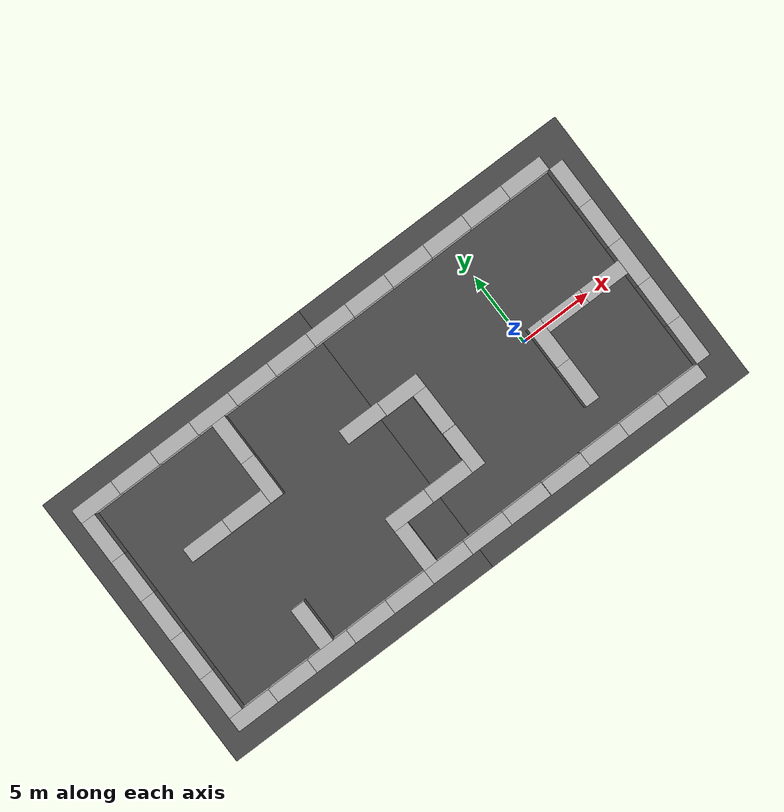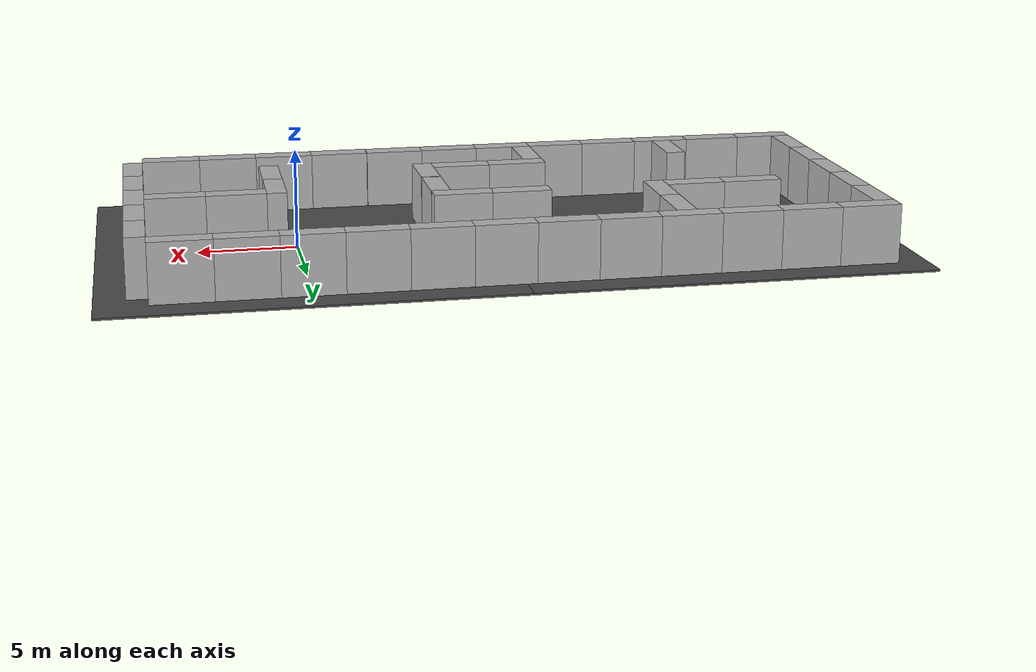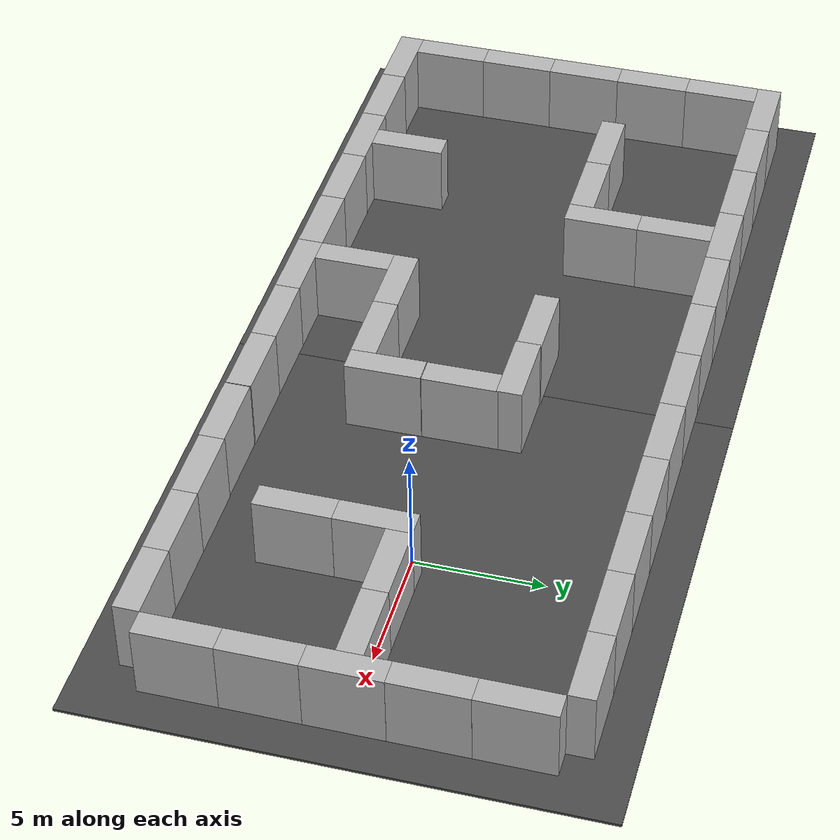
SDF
<sdf version="1.4">
 <world name="default">
  <light name="sun" type="directional">
   <pose>0 0 10 0 -0 0</pose>
   <diffuse>0.8 0.8 0.8 1</diffuse>
   <specular>0.2 0.2 0.2 1</specular>
   <attenuation>
    <range>1000</range>
    <constant>0.9</constant>
    <linear>0.01</linear>
    <quadratic>0.001</quadratic>
   </attenuation>
   <direction>-0.5 0.1 -0.9</direction>
  </light>
  <physics type="ode">
   <ode>
    <solver><type>quick</type><iters>1000</iters><sor>1.3</sor></solver>
    <constraints>
     <cfm>0</cfm>
     <erp>0.2</erp>
     <contact_max_correcting_vel>100</contact_max_correcting_vel>
     <contact_surface_layer>0.001</contact_surface_layer>
    </constraints>
   </ode>
   <max_step_size>0.01</max_step_size>
   <real_time_factor>1</real_time_factor>
   <real_time_update_rate>100</real_time_update_rate>
   <gravity>0 0 -9.8</gravity>
  </physics>
  <scene><ambient>0.4 0.4 0.4 1</ambient><background>0.7 0.7 0.7 1</background><shadows>1</shadows></scene>
  <spherical_coordinates>
   <surface_model>EARTH_WGS84</surface_model>
   <latitude_deg>0</latitude_deg>
   <longitude_deg>0</longitude_deg>
   <elevation>0</elevation>
   <heading_deg>0</heading_deg>
  </spherical_coordinates>
  <model name="asphalt_plane">
   <static>1</static>
   <link name="link">
    <collision name="collision"><geometry><box><size>20 20 0.1</size></box></geometry></collision>
    <visual name="visual">
     <cast_shadows>0</cast_shadows>
     <geometry><box><size>20 20 0.1</size></box></geometry>
     <material>
      <script>
       <uri>model://asphalt_plane/materials/scripts</uri>
       <uri>model://asphalt_plane/materials/textures</uri>
       <name>vrc/asphalt</name>
      </script>
     </material>
    </visual>
    <velocity_decay><linear>0</linear><angular>0</angular></velocity_decay>
   </link>
  </model>
  <model name="brick_box_3x1x3">
   <static>1</static>
   <link name="chassis">
    <pose>0 0 1.5 0 -0 0</pose>
    <collision name="collision"><geometry><box><size>3 1 3</size></box></geometry></collision>
    <visual name="visual">
     <geometry><mesh><uri>model://brick_box_3x1x3/meshes/simple_box.dae</uri><scale>3 1 3</scale></mesh></geometry>
     <material>
      <script>
       <uri>model://brick_box_3x1x3/materials/scripts</uri>
       <uri>model://brick_box_3x1x3/materials/textures</uri>
       <name>BrickBox/Diffuse</name>
      </script>
     </material>
    </visual>
    <velocity_decay><linear>0</linear><angular>0</angular></velocity_decay>
   </link>
   <pose>0 8 0 0 -0 0</pose>
  </model>
  <model name="brick_box_3x1x3_0">
   <static>1</static>
   <link name="chassis">
    <pose>0 0 1.5 0 -0 0</pose>
    <collision name="collision"><geometry><box><size>3 1 3</size></box></geometry></collision>
    <visual name="visual">
     <geometry><mesh><uri>model://brick_box_3x1x3/meshes/simple_box.dae</uri><scale>3 1 3</scale></mesh></geometry>
     <material>
      <script>
       <uri>model://brick_box_3x1x3/materials/scripts</uri>
       <uri>model://brick_box_3x1x3/materials/textures</uri>
       <name>BrickBox/Diffuse</name>
      </script>
     </material>
    </visual>
    <velocity_decay><linear>0</linear><angular>0</angular></velocity_decay>
   </link>
   <pose>3 8 0 0 -0 0</pose>
  </model>
  <model name="brick_box_3x1x3_1">
   <static>1</static>
   <link name="chassis">
    <pose>0 0 1.5 0 -0 0</pose>
    <collision name="collision"><geometry><box><size>3 1 3</size></box></geometry></collision>
    <visual name="visual">
     <geometry><mesh><uri>model://brick_box_3x1x3/meshes/simple_box.dae</uri><scale>3 1 3</scale></mesh></geometry>
     <material>
      <script>
       <uri>model://brick_box_3x1x3/materials/scripts</uri>
       <uri>model://brick_box_3x1x3/materials/textures</uri>
       <name>BrickBox/Diffuse</name>
      </script>
     </material>
    </visual>
    <velocity_decay><linear>0</linear><angular>0</angular></velocity_decay>
   </link>
   <pose>6 8 0 0 -0 0</pose>
  </model>
  <model name="brick_box_3x1x3_2">
   <static>1</static>
   <link name="chassis">
    <pose>0 0 1.5 0 -0 0</pose>
    <collision name="collision"><geometry><box><size>3 1 3</size></box></geometry></collision>
    <visual name="visual">
     <geometry><mesh><uri>model://brick_box_3x1x3/meshes/simple_box.dae</uri><scale>3 1 3</scale></mesh></geometry>
     <material>
      <script>
       <uri>model://brick_box_3x1x3/materials/scripts</uri>
       <uri>model://brick_box_3x1x3/materials/textures</uri>
       <name>BrickBox/Diffuse</name>
      </script>
     </material>
    </visual>
    <velocity_decay><linear>0</linear><angular>0</angular></velocity_decay>
   </link>
   <pose>-3 8 0 0 -0 0</pose>
  </model>
  <model name="brick_box_3x1x3_3">
   <static>1</static>
   <link name="chassis">
    <pose>0 0 1.5 0 -0 0</pose>
    <collision name="collision"><geometry><box><size>3 1 3</size></box></geometry></collision>
    <visual name="visual">
     <geometry><mesh><uri>model://brick_box_3x1x3/meshes/simple_box.dae</uri><scale>3 1 3</scale></mesh></geometry>
     <material>
      <script>
       <uri>model://brick_box_3x1x3/materials/scripts</uri>
       <uri>model://brick_box_3x1x3/materials/textures</uri>
       <name>BrickBox/Diffuse</name>
      </script>
     </material>
    </visual>
    <velocity_decay><linear>0</linear><angular>0</angular></velocity_decay>
   </link>
   <pose>-6 8 0 0 -0 0</pose>
  </model>
  <model name="brick_box_3x1x3_4">
   <static>1</static>
   <link name="chassis">
    <pose>0 0 1.5 0 -0 0</pose>
    <collision name="collision"><geometry><box><size>3 1 3</size></box></geometry></collision>
    <visual name="visual">
     <geometry><mesh><uri>model://brick_box_3x1x3/meshes/simple_box.dae</uri><scale>3 1 3</scale></mesh></geometry>
     <material>
      <script>
       <uri>model://brick_box_3x1x3/materials/scripts</uri>
       <uri>model://brick_box_3x1x3/materials/textures</uri>
       <name>BrickBox/Diffuse</name>
      </script>
     </material>
    </visual>
    <velocity_decay><linear>0</linear><angular>0</angular></velocity_decay>
   </link>
   <pose>6 -8 0 0 -0 0</pose>
  </model>
  <model name="brick_box_3x1x3_5">
   <static>1</static>
   <link name="chassis">
    <pose>0 0 1.5 0 -0 0</pose>
    <collision name="collision"><geometry><box><size>3 1 3</size></box></geometry></collision>
    <visual name="visual">
     <geometry><mesh><uri>model://brick_box_3x1x3/meshes/simple_box.dae</uri><scale>3 1 3</scale></mesh></geometry>
     <material>
      <script>
       <uri>model://brick_box_3x1x3/materials/scripts</uri>
       <uri>model://brick_box_3x1x3/materials/textures</uri>
       <name>BrickBox/Diffuse</name>
      </script>
     </material>
    </visual>
    <velocity_decay><linear>0</linear><angular>0</angular></velocity_decay>
   </link>
   <pose>3 -8 0 0 -0 0</pose>
  </model>
  <model name="brick_box_3x1x3_6">
   <static>1</static>
   <link name="chassis">
    <pose>0 0 1.5 0 -0 0</pose>
    <collision name="collision"><geometry><box><size>3 1 3</size></box></geometry></collision>
    <visual name="visual">
     <geometry><mesh><uri>model://brick_box_3x1x3/meshes/simple_box.dae</uri><scale>3 1 3</scale></mesh></geometry>
     <material>
      <script>
       <uri>model://brick_box_3x1x3/materials/scripts</uri>
       <uri>model://brick_box_3x1x3/materials/textures</uri>
       <name>BrickBox/Diffuse</name>
      </script>
     </material>
    </visual>
    <velocity_decay><linear>0</linear><angular>0</angular></velocity_decay>
   </link>
   <pose>0 -8 0 0 -0 0</pose>
  </model>
  <model name="brick_box_3x1x3_14">
   <static>1</static>
   <link name="chassis">
    <pose>0 0 1.5 0 -0 0</pose>
    <collision name="collision"><geometry><box><size>3 1 3</size></box></geometry></collision>
    <visual name="visual">
     <geometry><mesh><uri>model://brick_box_3x1x3/meshes/simple_box.dae</uri><scale>3 1 3</scale></mesh></geometry>
     <material>
      <script>
       <uri>model://brick_box_3x1x3/materials/scripts</uri>
       <uri>model://brick_box_3x1x3/materials/textures</uri>
       <name>BrickBox/Diffuse</name>
      </script>
     </material>
    </visual>
    <velocity_decay><linear>0</linear><angular>0</angular></velocity_decay>
   </link>
   <pose>8 6 0 0 -0 1.57</pose>
  </model>
  <model name="brick_box_3x1x3_15">
   <static>1</static>
   <link name="chassis">
    <pose>0 0 1.5 0 -0 0</pose>
    <collision name="collision"><geometry><box><size>3 1 3</size></box></geometry></collision>
    <visual name="visual">
     <geometry><mesh><uri>model://brick_box_3x1x3/meshes/simple_box.dae</uri><scale>3 1 3</scale></mesh></geometry>
     <material>
      <script>
       <uri>model://brick_box_3x1x3/materials/scripts</uri>
       <uri>model://brick_box_3x1x3/materials/textures</uri>
       <name>BrickBox/Diffuse</name>
      </script>
     </material>
    </visual>
    <velocity_decay><linear>0</linear><angular>0</angular></velocity_decay>
   </link>
   <pose>8 3 0 0 -0 1.57</pose>
  </model>
  <model name="brick_box_3x1x3_16">
   <static>1</static>
   <link name="chassis">
    <pose>0 0 1.5 0 -0 0</pose>
    <collision name="collision"><geometry><box><size>3 1 3</size></box></geometry></collision>
    <visual name="visual">
     <geometry><mesh><uri>model://brick_box_3x1x3/meshes/simple_box.dae</uri><scale>3 1 3</scale></mesh></geometry>
     <material>
      <script>
       <uri>model://brick_box_3x1x3/materials/scripts</uri>
       <uri>model://brick_box_3x1x3/materials/textures</uri>
       <name>BrickBox/Diffuse</name>
      </script>
     </material>
    </visual>
    <velocity_decay><linear>0</linear><angular>0</angular></velocity_decay>
   </link>
   <pose>8 0 0 0 -0 1.57</pose>
  </model>
  <model name="brick_box_3x1x3_17">
   <static>1</static>
   <link name="chassis">
    <pose>0 0 1.5 0 -0 0</pose>
    <collision name="collision"><geometry><box><size>3 1 3</size></box></geometry></collision>
    <visual name="visual">
     <geometry><mesh><uri>model://brick_box_3x1x3/meshes/simple_box.dae</uri><scale>3 1 3</scale></mesh></geometry>
     <material>
      <script>
       <uri>model://brick_box_3x1x3/materials/scripts</uri>
       <uri>model://brick_box_3x1x3/materials/textures</uri>
       <name>BrickBox/Diffuse</name>
      </script>
     </material>
    </visual>
    <velocity_decay><linear>0</linear><angular>0</angular></velocity_decay>
   </link>
   <pose>8 -3 0 0 -0 1.57</pose>
  </model>
  <model name="brick_box_3x1x3_18">
   <static>1</static>
   <link name="chassis">
    <pose>0 0 1.5 0 -0 0</pose>
    <collision name="collision"><geometry><box><size>3 1 3</size></box></geometry></collision>
    <visual name="visual">
     <geometry><mesh><uri>model://brick_box_3x1x3/meshes/simple_box.dae</uri><scale>3 1 3</scale></mesh></geometry>
     <material>
      <script>
       <uri>model://brick_box_3x1x3/materials/scripts</uri>
       <uri>model://brick_box_3x1x3/materials/textures</uri>
       <name>BrickBox/Diffuse</name>
      </script>
     </material>
    </visual>
    <velocity_decay><linear>0</linear><angular>0</angular></velocity_decay>
   </link>
   <pose>8 -6 0 0 -0 1.57</pose>
  </model>
  <model name="brick_box_3x1x3_19">
   <static>1</static>
   <link name="chassis">
    <pose>0 0 1.5 0 -0 0</pose>
    <collision name="collision"><geometry><box><size>3 1 3</size></box></geometry></collision>
    <visual name="visual">
     <geometry><mesh><uri>model://brick_box_3x1x3/meshes/simple_box.dae</uri><scale>3 1 3</scale></mesh></geometry>
     <material>
      <script>
       <uri>model://brick_box_3x1x3/materials/scripts</uri>
       <uri>model://brick_box_3x1x3/materials/textures</uri>
       <name>BrickBox/Diffuse</name>
      </script>
     </material>
    </visual>
    <velocity_decay><linear>0</linear><angular>0</angular></velocity_decay>
   </link>
   <pose>6 0 0 0 -0 0</pose>
  </model>
  <model name="brick_box_3x1x3_20">
   <static>1</static>
   <link name="chassis">
    <pose>0 0 1.5 0 -0 0</pose>
    <collision name="collision"><geometry><box><size>3 1 3</size></box></geometry></collision>
    <visual name="visual">
     <geometry><mesh><uri>model://brick_box_3x1x3/meshes/simple_box.dae</uri><scale>3 1 3</scale></mesh></geometry>
     <material>
      <script>
       <uri>model://brick_box_3x1x3/materials/scripts</uri>
       <uri>model://brick_box_3x1x3/materials/textures</uri>
       <name>BrickBox/Diffuse</name>
      </script>
     </material>
    </visual>
    <velocity_decay><linear>0</linear><angular>0</angular></velocity_decay>
   </link>
   <pose>3 0 0 0 -0 0</pose>
  </model>
  <model name="brick_box_3x1x3_21">
   <static>1</static>
   <link name="chassis">
    <pose>0 0 1.5 0 -0 0</pose>
    <collision name="collision"><geometry><box><size>3 1 3</size></box></geometry></collision>
    <visual name="visual">
     <geometry><mesh><uri>model://brick_box_3x1x3/meshes/simple_box.dae</uri><scale>3 1 3</scale></mesh></geometry>
     <material>
      <script>
       <uri>model://brick_box_3x1x3/materials/scripts</uri>
       <uri>model://brick_box_3x1x3/materials/textures</uri>
       <name>BrickBox/Diffuse</name>
      </script>
     </material>
    </visual>
    <velocity_decay><linear>0</linear><angular>0</angular></velocity_decay>
   </link>
   <pose>1 -1 0 0 -0 1.57</pose>
  </model>
  <model name="brick_box_3x1x3_22">
   <static>1</static>
   <link name="chassis">
    <pose>0 0 1.5 0 -0 0</pose>
    <collision name="collision"><geometry><box><size>3 1 3</size></box></geometry></collision>
    <visual name="visual">
     <geometry><mesh><uri>model://brick_box_3x1x3/meshes/simple_box.dae</uri><scale>3 1 3</scale></mesh></geometry>
     <material>
      <script>
       <uri>model://brick_box_3x1x3/materials/scripts</uri>
       <uri>model://brick_box_3x1x3/materials/textures</uri>
       <name>BrickBox/Diffuse</name>
      </script>
     </material>
    </visual>
    <velocity_decay><linear>0</linear><angular>0</angular></velocity_decay>
   </link>
   <pose>1 -4 0 0 -0 1.57</pose>
  </model>
  <model name="asphalt_plane_1">
   <static>1</static>
   <link name="link">
    <collision name="collision"><geometry><box><size>20 20 0.1</size></box></geometry></collision>
    <visual name="visual">
     <cast_shadows>0</cast_shadows>
     <geometry><box><size>20 20 0.1</size></box></geometry>
     <material>
      <script>
       <uri>model://asphalt_plane/materials/scripts</uri>
       <uri>model://asphalt_plane/materials/textures</uri>
       <name>vrc/asphalt</name>
      </script>
     </material>
    </visual>
    <velocity_decay><linear>0</linear><angular>0</angular></velocity_decay>
   </link>
   <pose>-20 0 0 0 -0 0</pose>
  </model>
  <model name="brick_box_3x1x3_23">
   <static>1</static>
   <link name="chassis">
    <pose>0 0 1.5 0 -0 0</pose>
    <collision name="collision"><geometry><box><size>3 1 3</size></box></geometry></collision>
    <visual name="visual">
     <geometry><mesh><uri>model://brick_box_3x1x3/meshes/simple_box.dae</uri><scale>3 1 3</scale></mesh></geometry>
     <material>
      <script>
       <uri>model://brick_box_3x1x3/materials/scripts</uri>
       <uri>model://brick_box_3x1x3/materials/textures</uri>
       <name>BrickBox/Diffuse</name>
      </script>
     </material>
    </visual>
    <velocity_decay><linear>0</linear><angular>0</angular></velocity_decay>
   </link>
   <pose>-2.97682 -8.02224 0 0 -0 0</pose>
  </model>
  <model name="brick_box_3x1x3_24">
   <static>1</static>
   <link name="chassis">
    <pose>0 0 1.5 0 -0 0</pose>
    <collision name="collision"><geometry><box><size>3 1 3</size></box></geometry></collision>
    <visual name="visual">
     <geometry><mesh><uri>model://brick_box_3x1x3/meshes/simple_box.dae</uri><scale>3 1 3</scale></mesh></geometry>
     <material>
      <script>
       <uri>model://brick_box_3x1x3/materials/scripts</uri>
       <uri>model://brick_box_3x1x3/materials/textures</uri>
       <name>BrickBox/Diffuse</name>
      </script>
     </material>
    </visual>
    <velocity_decay><linear>0</linear><angular>0</angular></velocity_decay>
   </link>
   <pose>-6 -8 0 0 -0 0</pose>
  </model>
  <model name="brick_box_3x1x3_25">
   <static>1</static>
   <link name="chassis">
    <pose>0 0 1.5 0 -0 0</pose>
    <collision name="collision"><geometry><box><size>3 1 3</size></box></geometry></collision>
    <visual name="visual">
     <geometry><mesh><uri>model://brick_box_3x1x3/meshes/simple_box.dae</uri><scale>3 1 3</scale></mesh></geometry>
     <material>
      <script>
       <uri>model://brick_box_3x1x3/materials/scripts</uri>
       <uri>model://brick_box_3x1x3/materials/textures</uri>
       <name>BrickBox/Diffuse</name>
      </script>
     </material>
    </visual>
    <velocity_decay><linear>0</linear><angular>0</angular></velocity_decay>
   </link>
   <pose>-9 -8 0 0 -0 0</pose>
  </model>
  <model name="brick_box_3x1x3_26">
   <static>1</static>
   <link name="chassis">
    <pose>0 0 1.5 0 -0 0</pose>
    <collision name="collision"><geometry><box><size>3 1 3</size></box></geometry></collision>
    <visual name="visual">
     <geometry><mesh><uri>model://brick_box_3x1x3/meshes/simple_box.dae</uri><scale>3 1 3</scale></mesh></geometry>
     <material>
      <script>
       <uri>model://brick_box_3x1x3/materials/scripts</uri>
       <uri>model://brick_box_3x1x3/materials/textures</uri>
       <name>BrickBox/Diffuse</name>
      </script>
     </material>
    </visual>
    <velocity_decay><linear>0</linear><angular>0</angular></velocity_decay>
   </link>
   <pose>-12 -8 0 0 -0 0</pose>
  </model>
  <model name="brick_box_3x1x3_28">
   <static>1</static>
   <link name="chassis">
    <pose>0 0 1.5 0 -0 0</pose>
    <collision name="collision"><geometry><box><size>3 1 3</size></box></geometry></collision>
    <visual name="visual">
     <geometry><mesh><uri>model://brick_box_3x1x3/meshes/simple_box.dae</uri><scale>3 1 3</scale></mesh></geometry>
     <material>
      <script>
       <uri>model://brick_box_3x1x3/materials/scripts</uri>
       <uri>model://brick_box_3x1x3/materials/textures</uri>
       <name>BrickBox/Diffuse</name>
      </script>
     </material>
    </visual>
    <velocity_decay><linear>0</linear><angular>0</angular></velocity_decay>
   </link>
   <pose>-13 -6 0 0 0 -1.56893</pose>
  </model>
  <model name="brick_box_3x1x3_29">
   <static>1</static>
   <link name="chassis">
    <pose>0 0 1.5 0 -0 0</pose>
    <collision name="collision"><geometry><box><size>3 1 3</size></box></geometry></collision>
    <visual name="visual">
     <geometry><mesh><uri>model://brick_box_3x1x3/meshes/simple_box.dae</uri><scale>3 1 3</scale></mesh></geometry>
     <material>
      <script>
       <uri>model://brick_box_3x1x3/materials/scripts</uri>
       <uri>model://brick_box_3x1x3/materials/textures</uri>
       <name>BrickBox/Diffuse</name>
      </script>
     </material>
    </visual>
    <velocity_decay><linear>0</linear><angular>0</angular></velocity_decay>
   </link>
   <pose>-12 -4 0 0 -0 0</pose>
  </model>
  <model name="brick_box_3x1x3_30">
   <static>1</static>
   <link name="chassis">
    <pose>0 0 1.5 0 -0 0</pose>
    <collision name="collision"><geometry><box><size>3 1 3</size></box></geometry></collision>
    <visual name="visual">
     <geometry><mesh><uri>model://brick_box_3x1x3/meshes/simple_box.dae</uri><scale>3 1 3</scale></mesh></geometry>
     <material>
      <script>
       <uri>model://brick_box_3x1x3/materials/scripts</uri>
       <uri>model://brick_box_3x1x3/materials/textures</uri>
       <name>BrickBox/Diffuse</name>
      </script>
     </material>
    </visual>
    <velocity_decay><linear>0</linear><angular>0</angular></velocity_decay>
   </link>
   <pose>-9 -4 0 0 -0 0</pose>
  </model>
  <model name="brick_box_3x1x3_32">
   <static>1</static>
   <link name="chassis">
    <pose>0 0 1.5 0 -0 0</pose>
    <collision name="collision"><geometry><box><size>3 1 3</size></box></geometry></collision>
    <visual name="visual">
     <geometry><mesh><uri>model://brick_box_3x1x3/meshes/simple_box.dae</uri><scale>3 1 3</scale></mesh></geometry>
     <material>
      <script>
       <uri>model://brick_box_3x1x3/materials/scripts</uri>
       <uri>model://brick_box_3x1x3/materials/textures</uri>
       <name>BrickBox/Diffuse</name>
      </script>
     </material>
    </visual>
    <velocity_decay><linear>0</linear><angular>0</angular></velocity_decay>
   </link>
   <pose>-7.02003 -2.98767 0 0 -0 1.58252</pose>
  </model>
  <model name="brick_box_3x1x3_34">
   <static>1</static>
   <link name="chassis">
    <pose>0 0 1.5 0 -0 0</pose>
    <collision name="collision"><geometry><box><size>3 1 3</size></box></geometry></collision>
    <visual name="visual">
     <geometry><mesh><uri>model://brick_box_3x1x3/meshes/simple_box.dae</uri><scale>3 1 3</scale></mesh></geometry>
     <material>
      <script>
       <uri>model://brick_box_3x1x3/materials/scripts</uri>
       <uri>model://brick_box_3x1x3/materials/textures</uri>
       <name>BrickBox/Diffuse</name>
      </script>
     </material>
    </visual>
    <velocity_decay><linear>0</linear><angular>0</angular></velocity_decay>
   </link>
   <pose>-7.05581 0.02957 -0.01729 0 -0 1.57838</pose>
  </model>
  <model name="brick_box_3x1x3_35">
   <static>1</static>
   <link name="chassis">
    <pose>0 0 1.5 0 -0 0</pose>
    <collision name="collision"><geometry><box><size>3 1 3</size></box></geometry></collision>
    <visual name="visual">
     <geometry><mesh><uri>model://brick_box_3x1x3/meshes/simple_box.dae</uri><scale>3 1 3</scale></mesh></geometry>
     <material>
      <script>
       <uri>model://brick_box_3x1x3/materials/scripts</uri>
       <uri>model://brick_box_3x1x3/materials/textures</uri>
       <name>BrickBox/Diffuse</name>
      </script>
     </material>
    </visual>
    <velocity_decay><linear>0</linear><angular>0</angular></velocity_decay>
   </link>
   <pose>-9 8 0 0 -0 0</pose>
  </model>
  <model name="brick_box_3x1x3_36">
   <static>1</static>
   <link name="chassis">
    <pose>0 0 1.5 0 -0 0</pose>
    <collision name="collision"><geometry><box><size>3 1 3</size></box></geometry></collision>
    <visual name="visual">
     <geometry><mesh><uri>model://brick_box_3x1x3/meshes/simple_box.dae</uri><scale>3 1 3</scale></mesh></geometry>
     <material>
      <script>
       <uri>model://brick_box_3x1x3/materials/scripts</uri>
       <uri>model://brick_box_3x1x3/materials/textures</uri>
       <name>BrickBox/Diffuse</name>
      </script>
     </material>
    </visual>
    <velocity_decay><linear>0</linear><angular>0</angular></velocity_decay>
   </link>
   <pose>-12 8 0 0 -0 0</pose>
  </model>
  <model name="brick_box_3x1x3_37">
   <static>1</static>
   <link name="chassis">
    <pose>0 0 1.5 0 -0 0</pose>
    <collision name="collision"><geometry><box><size>3 1 3</size></box></geometry></collision>
    <visual name="visual">
     <geometry><mesh><uri>model://brick_box_3x1x3/meshes/simple_box.dae</uri><scale>3 1 3</scale></mesh></geometry>
     <material>
      <script>
       <uri>model://brick_box_3x1x3/materials/scripts</uri>
       <uri>model://brick_box_3x1x3/materials/textures</uri>
       <name>BrickBox/Diffuse</name>
      </script>
     </material>
    </visual>
    <velocity_decay><linear>0</linear><angular>0</angular></velocity_decay>
   </link>
   <pose>-15 8 0 0 -0 0</pose>
  </model>
  <model name="brick_box_3x1x3_38">
   <static>1</static>
   <link name="chassis">
    <pose>0 0 1.5 0 -0 0</pose>
    <collision name="collision"><geometry><box><size>3 1 3</size></box></geometry></collision>
    <visual name="visual">
     <geometry><mesh><uri>model://brick_box_3x1x3/meshes/simple_box.dae</uri><scale>3 1 3</scale></mesh></geometry>
     <material>
      <script>
       <uri>model://brick_box_3x1x3/materials/scripts</uri>
       <uri>model://brick_box_3x1x3/materials/textures</uri>
       <name>BrickBox/Diffuse</name>
      </script>
     </material>
    </visual>
    <velocity_decay><linear>0</linear><angular>0</angular></velocity_decay>
   </link>
   <pose>-18 8 0 0 -0 0</pose>
  </model>
  <model name="brick_box_3x1x3_39">
   <static>1</static>
   <link name="chassis">
    <pose>0 0 1.5 0 -0 0</pose>
    <collision name="collision"><geometry><box><size>3 1 3</size></box></geometry></collision>
    <visual name="visual">
     <geometry><mesh><uri>model://brick_box_3x1x3/meshes/simple_box.dae</uri><scale>3 1 3</scale></mesh></geometry>
     <material>
      <script>
       <uri>model://brick_box_3x1x3/materials/scripts</uri>
       <uri>model://brick_box_3x1x3/materials/textures</uri>
       <name>BrickBox/Diffuse</name>
      </script>
     </material>
    </visual>
    <velocity_decay><linear>0</linear><angular>0</angular></velocity_decay>
   </link>
   <pose>-21 8 0 0 -0 0</pose>
  </model>
  <model name="brick_box_3x1x3_40">
   <static>1</static>
   <link name="chassis">
    <pose>0 0 1.5 0 -0 0</pose>
    <collision name="collision"><geometry><box><size>3 1 3</size></box></geometry></collision>
    <visual name="visual">
     <geometry><mesh><uri>model://brick_box_3x1x3/meshes/simple_box.dae</uri><scale>3 1 3</scale></mesh></geometry>
     <material>
      <script>
       <uri>model://brick_box_3x1x3/materials/scripts</uri>
       <uri>model://brick_box_3x1x3/materials/textures</uri>
       <name>BrickBox/Diffuse</name>
      </script>
     </material>
    </visual>
    <velocity_decay><linear>0</linear><angular>0</angular></velocity_decay>
   </link>
   <pose>-24 8 0 0 -0 0</pose>
  </model>
  <model name="brick_box_3x1x3_41">
   <static>1</static>
   <link name="chassis">
    <pose>0 0 1.5 0 -0 0</pose>
    <collision name="collision"><geometry><box><size>3 1 3</size></box></geometry></collision>
    <visual name="visual">
     <geometry><mesh><uri>model://brick_box_3x1x3/meshes/simple_box.dae</uri><scale>3 1 3</scale></mesh></geometry>
     <material>
      <script>
       <uri>model://brick_box_3x1x3/materials/scripts</uri>
       <uri>model://brick_box_3x1x3/materials/textures</uri>
       <name>BrickBox/Diffuse</name>
      </script>
     </material>
    </visual>
    <velocity_decay><linear>0</linear><angular>0</angular></velocity_decay>
   </link>
   <pose>-27 8 0 0 -0 0</pose>
  </model>
  <model name="brick_box_3x1x3_42">
   <static>1</static>
   <link name="chassis">
    <pose>0 0 1.5 0 -0 0</pose>
    <collision name="collision"><geometry><box><size>3 1 3</size></box></geometry></collision>
    <visual name="visual">
     <geometry><mesh><uri>model://brick_box_3x1x3/meshes/simple_box.dae</uri><scale>3 1 3</scale></mesh></geometry>
     <material>
      <script>
       <uri>model://brick_box_3x1x3/materials/scripts</uri>
       <uri>model://brick_box_3x1x3/materials/textures</uri>
       <name>BrickBox/Diffuse</name>
      </script>
     </material>
    </visual>
    <velocity_decay><linear>0</linear><angular>0</angular></velocity_decay>
   </link>
   <pose>-28 6 0 0 -0 1.5708</pose>
  </model>
  <model name="brick_box_3x1x3_43">
   <static>1</static>
   <link name="chassis">
    <pose>0 0 1.5 0 -0 0</pose>
    <collision name="collision"><geometry><box><size>3 1 3</size></box></geometry></collision>
    <visual name="visual">
     <geometry><mesh><uri>model://brick_box_3x1x3/meshes/simple_box.dae</uri><scale>3 1 3</scale></mesh></geometry>
     <material>
      <script>
       <uri>model://brick_box_3x1x3/materials/scripts</uri>
       <uri>model://brick_box_3x1x3/materials/textures</uri>
       <name>BrickBox/Diffuse</name>
      </script>
     </material>
    </visual>
    <velocity_decay><linear>0</linear><angular>0</angular></velocity_decay>
   </link>
   <pose>-28 3 0 0 -0 1.5708</pose>
  </model>
  <model name="brick_box_3x1x3_44">
   <static>1</static>
   <link name="chassis">
    <pose>0 0 1.5 0 -0 0</pose>
    <collision name="collision"><geometry><box><size>3 1 3</size></box></geometry></collision>
    <visual name="visual">
     <geometry><mesh><uri>model://brick_box_3x1x3/meshes/simple_box.dae</uri><scale>3 1 3</scale></mesh></geometry>
     <material>
      <script>
       <uri>model://brick_box_3x1x3/materials/scripts</uri>
       <uri>model://brick_box_3x1x3/materials/textures</uri>
       <name>BrickBox/Diffuse</name>
      </script>
     </material>
    </visual>
    <velocity_decay><linear>0</linear><angular>0</angular></velocity_decay>
   </link>
   <pose>-28 0 0 0 -0 1.5708</pose>
  </model>
  <model name="brick_box_3x1x3_46">
   <static>1</static>
   <link name="chassis">
    <pose>0 0 1.5 0 -0 0</pose>
    <collision name="collision"><geometry><box><size>3 1 3</size></box></geometry></collision>
    <visual name="visual">
     <geometry><mesh><uri>model://brick_box_3x1x3/meshes/simple_box.dae</uri><scale>3 1 3</scale></mesh></geometry>
     <material>
      <script>
       <uri>model://brick_box_3x1x3/materials/scripts</uri>
       <uri>model://brick_box_3x1x3/materials/textures</uri>
       <name>BrickBox/Diffuse</name>
      </script>
     </material>
    </visual>
    <velocity_decay><linear>0</linear><angular>0</angular></velocity_decay>
   </link>
   <pose>-28 -3 0 0 0 -1.5708</pose>
  </model>
  <model name="brick_box_3x1x3_47">
   <static>1</static>
   <link name="chassis">
    <pose>0 0 1.5 0 -0 0</pose>
    <collision name="collision"><geometry><box><size>3 1 3</size></box></geometry></collision>
    <visual name="visual">
     <geometry><mesh><uri>model://brick_box_3x1x3/meshes/simple_box.dae</uri><scale>3 1 3</scale></mesh></geometry>
     <material>
      <script>
       <uri>model://brick_box_3x1x3/materials/scripts</uri>
       <uri>model://brick_box_3x1x3/materials/textures</uri>
       <name>BrickBox/Diffuse</name>
      </script>
     </material>
    </visual>
    <velocity_decay><linear>0</linear><angular>0</angular></velocity_decay>
   </link>
   <pose>-28 -6 0 0 0 -1.5708</pose>
  </model>
  <model name="brick_box_3x1x3_48">
   <static>1</static>
   <link name="chassis">
    <pose>0 0 1.5 0 -0 0</pose>
    <collision name="collision"><geometry><box><size>3 1 3</size></box></geometry></collision>
    <visual name="visual">
     <geometry><mesh><uri>model://brick_box_3x1x3/meshes/simple_box.dae</uri><scale>3 1 3</scale></mesh></geometry>
     <material>
      <script>
       <uri>model://brick_box_3x1x3/materials/scripts</uri>
       <uri>model://brick_box_3x1x3/materials/textures</uri>
       <name>BrickBox/Diffuse</name>
      </script>
     </material>
    </visual>
    <velocity_decay><linear>0</linear><angular>0</angular></velocity_decay>
   </link>
   <pose>-15 -8 0 0 -0 0</pose>
  </model>
  <model name="brick_box_3x1x3_49">
   <static>1</static>
   <link name="chassis">
    <pose>0 0 1.5 0 -0 0</pose>
    <collision name="collision"><geometry><box><size>3 1 3</size></box></geometry></collision>
    <visual name="visual">
     <geometry><mesh><uri>model://brick_box_3x1x3/meshes/simple_box.dae</uri><scale>3 1 3</scale></mesh></geometry>
     <material>
      <script>
       <uri>model://brick_box_3x1x3/materials/scripts</uri>
       <uri>model://brick_box_3x1x3/materials/textures</uri>
       <name>BrickBox/Diffuse</name>
      </script>
     </material>
    </visual>
    <velocity_decay><linear>0</linear><angular>0</angular></velocity_decay>
   </link>
   <pose>-18 -8 0 0 -0 0</pose>
  </model>
  <model name="brick_box_3x1x3_50">
   <static>1</static>
   <link name="chassis">
    <pose>0 0 1.5 0 -0 0</pose>
    <collision name="collision"><geometry><box><size>3 1 3</size></box></geometry></collision>
    <visual name="visual">
     <geometry><mesh><uri>model://brick_box_3x1x3/meshes/simple_box.dae</uri><scale>3 1 3</scale></mesh></geometry>
     <material>
      <script>
       <uri>model://brick_box_3x1x3/materials/scripts</uri>
       <uri>model://brick_box_3x1x3/materials/textures</uri>
       <name>BrickBox/Diffuse</name>
      </script>
     </material>
    </visual>
    <velocity_decay><linear>0</linear><angular>0</angular></velocity_decay>
   </link>
   <pose>-21 -8 0 0 -0 0</pose>
  </model>
  <model name="brick_box_3x1x3_51">
   <static>1</static>
   <link name="chassis">
    <pose>0 0 1.5 0 -0 0</pose>
    <collision name="collision"><geometry><box><size>3 1 3</size></box></geometry></collision>
    <visual name="visual">
     <geometry><mesh><uri>model://brick_box_3x1x3/meshes/simple_box.dae</uri><scale>3 1 3</scale></mesh></geometry>
     <material>
      <script>
       <uri>model://brick_box_3x1x3/materials/scripts</uri>
       <uri>model://brick_box_3x1x3/materials/textures</uri>
       <name>BrickBox/Diffuse</name>
      </script>
     </material>
    </visual>
    <velocity_decay><linear>0</linear><angular>0</angular></velocity_decay>
   </link>
   <pose>-24 -8 0 0 -0 0</pose>
  </model>
  <model name="brick_box_3x1x3_52">
   <static>1</static>
   <link name="chassis">
    <pose>0 0 1.5 0 -0 0</pose>
    <collision name="collision"><geometry><box><size>3 1 3</size></box></geometry></collision>
    <visual name="visual">
     <geometry><mesh><uri>model://brick_box_3x1x3/meshes/simple_box.dae</uri><scale>3 1 3</scale></mesh></geometry>
     <material>
      <script>
       <uri>model://brick_box_3x1x3/materials/scripts</uri>
       <uri>model://brick_box_3x1x3/materials/textures</uri>
       <name>BrickBox/Diffuse</name>
      </script>
     </material>
    </visual>
    <velocity_decay><linear>0</linear><angular>0</angular></velocity_decay>
   </link>
   <pose>-27 -8 0 0 -0 0</pose>
  </model>
  <model name="brick_box_3x1x3_53">
   <static>1</static>
   <link name="chassis">
    <pose>0 0 1.5 0 -0 0</pose>
    <collision name="collision"><geometry><box><size>3 1 3</size></box></geometry></collision>
    <visual name="visual">
     <geometry><mesh><uri>model://brick_box_3x1x3/meshes/simple_box.dae</uri><scale>3 1 3</scale></mesh></geometry>
     <material>
      <script>
       <uri>model://brick_box_3x1x3/materials/scripts</uri>
       <uri>model://brick_box_3x1x3/materials/textures</uri>
       <name>BrickBox/Diffuse</name>
      </script>
     </material>
    </visual>
    <velocity_decay><linear>0</linear><angular>0</angular></velocity_decay>
   </link>
   <pose>-8.07546 1.9575 0 0 -0 0</pose>
  </model>
  <model name="brick_box_3x1x3_54">
   <static>1</static>
   <link name="chassis">
    <pose>0 0 1.5 0 -0 0</pose>
    <collision name="collision"><geometry><box><size>3 1 3</size></box></geometry></collision>
    <visual name="visual">
     <geometry><mesh><uri>model://brick_box_3x1x3/meshes/simple_box.dae</uri><scale>3 1 3</scale></mesh></geometry>
     <material>
      <script>
       <uri>model://brick_box_3x1x3/materials/scripts</uri>
       <uri>model://brick_box_3x1x3/materials/textures</uri>
       <name>BrickBox/Diffuse</name>
      </script>
     </material>
    </visual>
    <velocity_decay><linear>0</linear><angular>0</angular></velocity_decay>
   </link>
   <pose>-11 2 0 0 -0 0</pose>
  </model>
  <model name="brick_box_3x1x3_57">
   <static>1</static>
   <link name="chassis">
    <pose>0 0 1.5 0 -0 0</pose>
    <collision name="collision"><geometry><box><size>3 1 3</size></box></geometry></collision>
    <visual name="visual">
     <geometry><mesh><uri>model://brick_box_3x1x3/meshes/simple_box.dae</uri><scale>3 1 3</scale></mesh></geometry>
     <material>
      <script>
       <uri>model://brick_box_3x1x3/materials/scripts</uri>
       <uri>model://brick_box_3x1x3/materials/textures</uri>
       <name>BrickBox/Diffuse</name>
      </script>
     </material>
    </visual>
    <velocity_decay><linear>0</linear><angular>0</angular></velocity_decay>
   </link>
   <pose>-20 2 0 0 -0 0</pose>
  </model>
  <model name="brick_box_3x1x3_58">
   <static>1</static>
   <link name="chassis">
    <pose>0 0 1.5 0 -0 0</pose>
    <collision name="collision"><geometry><box><size>3 1 3</size></box></geometry></collision>
    <visual name="visual">
     <geometry><mesh><uri>model://brick_box_3x1x3/meshes/simple_box.dae</uri><scale>3 1 3</scale></mesh></geometry>
     <material>
      <script>
       <uri>model://brick_box_3x1x3/materials/scripts</uri>
       <uri>model://brick_box_3x1x3/materials/textures</uri>
       <name>BrickBox/Diffuse</name>
      </script>
     </material>
    </visual>
    <velocity_decay><linear>0</linear><angular>0</angular></velocity_decay>
   </link>
   <pose>-23 2 0 0 -0 0</pose>
  </model>
  <model name="brick_box_3x1x3_59">
   <static>1</static>
   <link name="chassis">
    <pose>0 0 1.5 0 -0 0</pose>
    <collision name="collision"><geometry><box><size>3 1 3</size></box></geometry></collision>
    <visual name="visual">
     <geometry><mesh><uri>model://brick_box_3x1x3/meshes/simple_box.dae</uri><scale>3 1 3</scale></mesh></geometry>
     <material>
      <script>
       <uri>model://brick_box_3x1x3/materials/scripts</uri>
       <uri>model://brick_box_3x1x3/materials/textures</uri>
       <name>BrickBox/Diffuse</name>
      </script>
     </material>
    </visual>
    <velocity_decay><linear>0</linear><angular>0</angular></velocity_decay>
   </link>
   <pose>-18 3 0 0 0 -1.5708</pose>
  </model>
  <model name="brick_box_3x1x3_60">
   <static>1</static>
   <link name="chassis">
    <pose>0 0 1.5 0 -0 0</pose>
    <collision name="collision"><geometry><box><size>3 1 3</size></box></geometry></collision>
    <visual name="visual">
     <geometry><mesh><uri>model://brick_box_3x1x3/meshes/simple_box.dae</uri><scale>3 1 3</scale></mesh></geometry>
     <material>
      <script>
       <uri>model://brick_box_3x1x3/materials/scripts</uri>
       <uri>model://brick_box_3x1x3/materials/textures</uri>
       <name>BrickBox/Diffuse</name>
      </script>
     </material>
    </visual>
    <velocity_decay><linear>0</linear><angular>0</angular></velocity_decay>
   </link>
   <pose>-18 6 0 0 0 -1.5708</pose>
  </model>
  <model name="brick_box_3x1x3_61">
   <static>1</static>
   <link name="chassis">
    <pose>0 0 1.5 0 -0 0</pose>
    <collision name="collision"><geometry><box><size>3 1 3</size></box></geometry></collision>
    <visual name="visual">
     <geometry><mesh><uri>model://brick_box_3x1x3/meshes/simple_box.dae</uri><scale>3 1 3</scale></mesh></geometry>
     <material>
      <script>
       <uri>model://brick_box_3x1x3/materials/scripts</uri>
       <uri>model://brick_box_3x1x3/materials/textures</uri>
       <name>BrickBox/Diffuse</name>
      </script>
     </material>
    </visual>
    <velocity_decay><linear>0</linear><angular>0</angular></velocity_decay>
   </link>
   <pose>-21 -6 0 0 0 -1.5708</pose>
  </model>
 </world>
</sdf>
